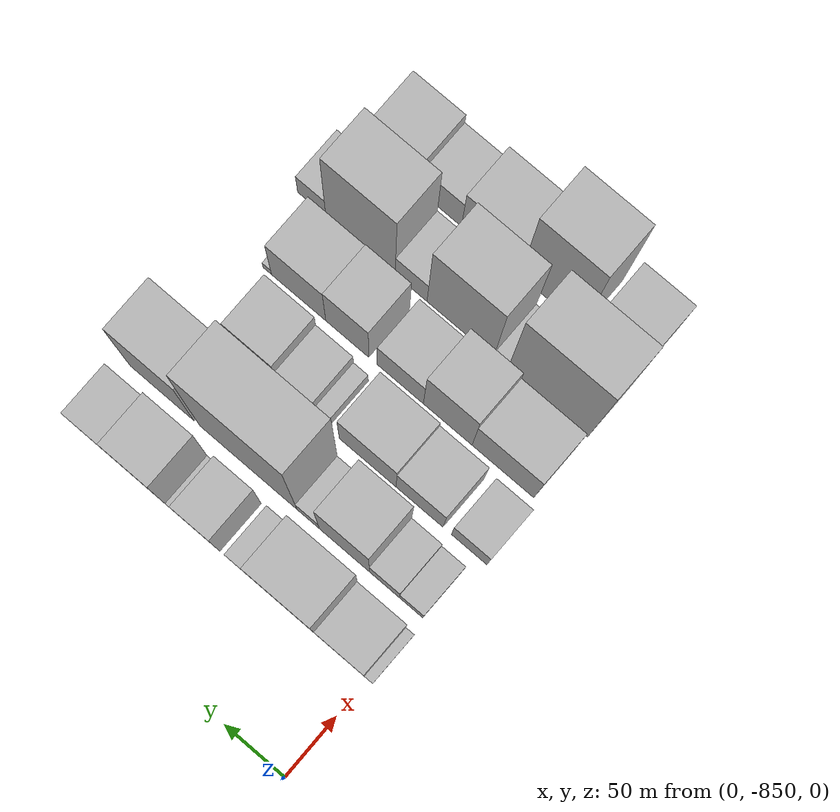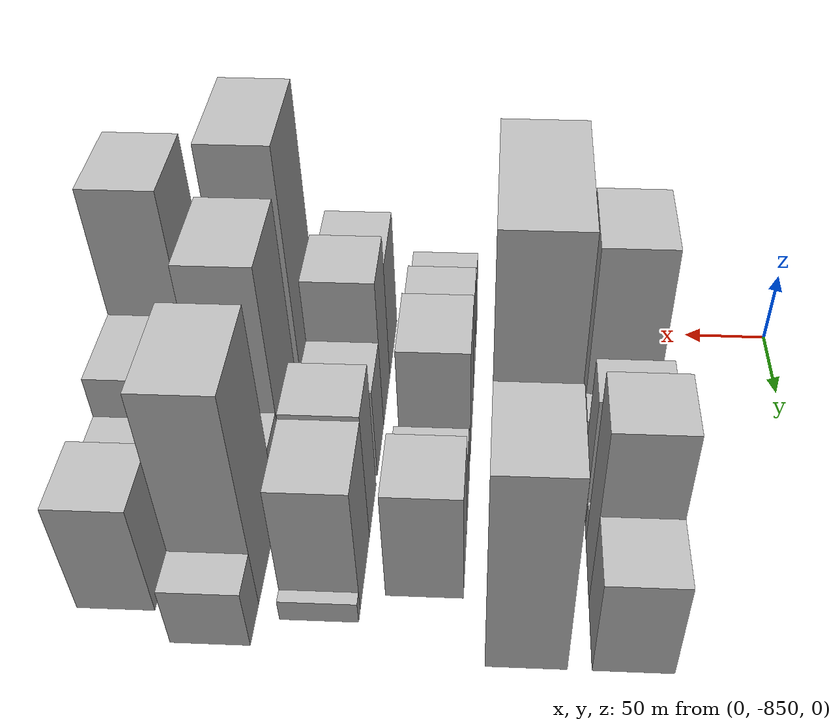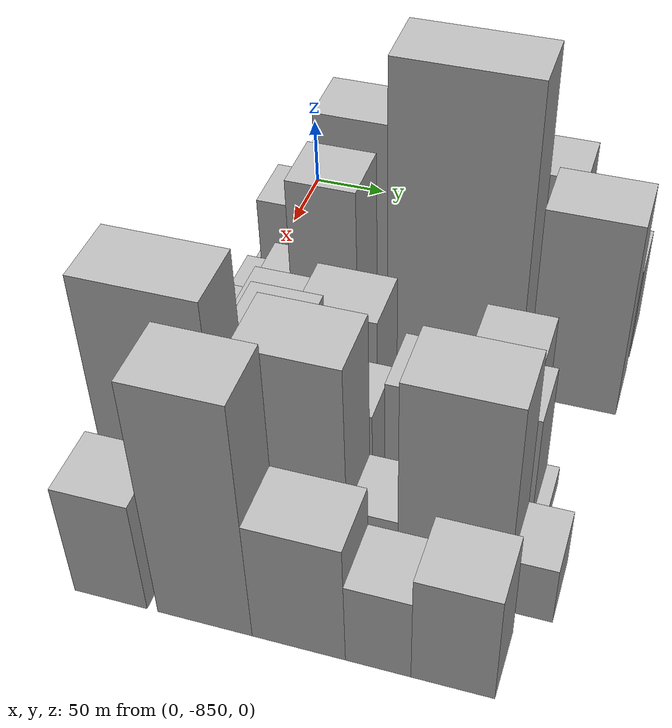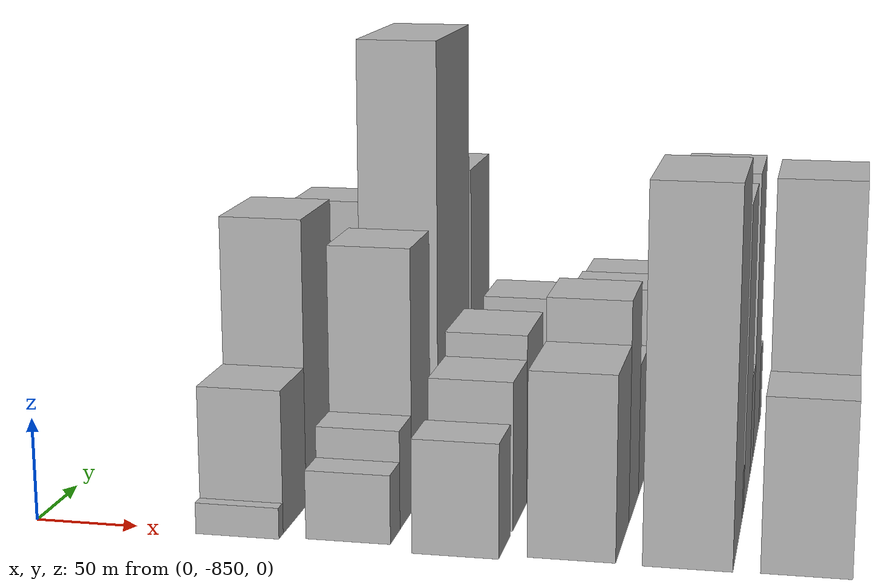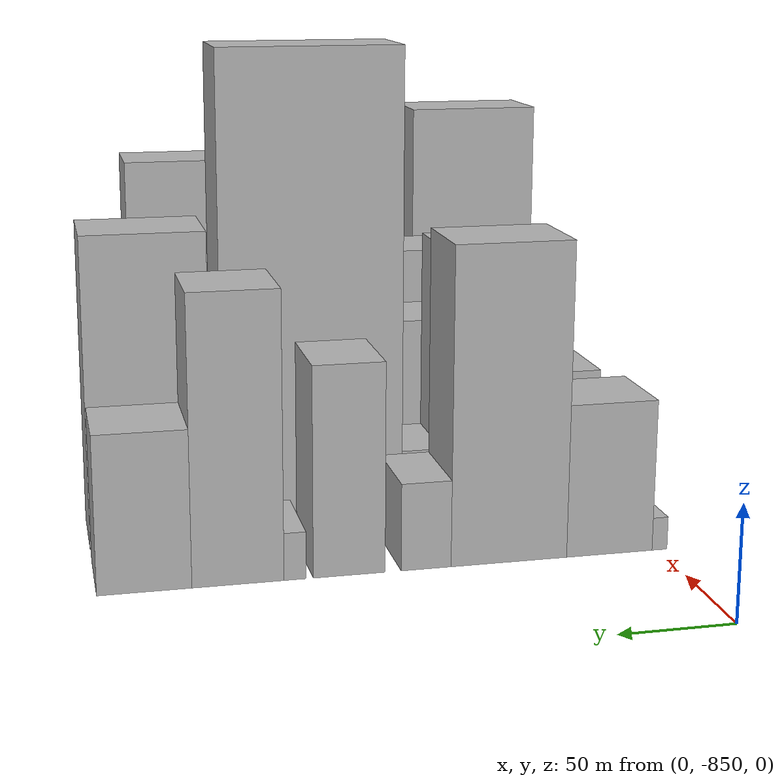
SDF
<sdf version="1.6">
 <world name="default">
  <model name="building_1">
   <static>1</static>
   <pose>100.0000 -850.4928 0 0.000000 0.000000 0.000000</pose>
   <link name="link">
    <pose>0 0 7.50 0 0 0</pose>
    <collision name="collision"><geometry><box><size>40.0000 7.0145 15.0000</size></box></geometry></collision>
    <visual name="visual">
     <cast_shadows>0</cast_shadows>
     <geometry><box><size>40.0000 7.0145 15.0000</size></box></geometry>
     <material>
      <script>
       <uri>model://HANNAS_wall/materials/scripts</uri>
       <uri>model://HANNAS_wall/materials/textures</uri>
       <name>vrc/HANNAS_wall</name>
      </script>
     </material>
    </visual>
   </link>
  </model>
  <model name="building_2">
   <static>1</static>
   <pose>100.0000 -827.1640 0 0.000000 0.000000 0.000000</pose>
   <link name="link">
    <pose>0 0 34.50 0 0 0</pose>
    <collision name="collision"><geometry><box><size>40.0000 39.6430 69.0000</size></box></geometry></collision>
    <visual name="visual">
     <cast_shadows>0</cast_shadows>
     <geometry><box><size>40.0000 39.6430 69.0000</size></box></geometry>
     <material>
      <script>
       <uri>model://HANNAS_wall/materials/scripts</uri>
       <uri>model://HANNAS_wall/materials/textures</uri>
       <name>vrc/HANNAS_wall</name>
      </script>
     </material>
    </visual>
   </link>
  </model>
  <model name="building_3">
   <static>1</static>
   <pose>100.0000 -781.2033 0 0.000000 0.000000 0.000000</pose>
   <link name="link">
    <pose>0 0 70.50 0 0 0</pose>
    <collision name="collision"><geometry><box><size>40.0000 52.2784 141.0000</size></box></geometry></collision>
    <visual name="visual">
     <cast_shadows>0</cast_shadows>
     <geometry><box><size>40.0000 52.2784 141.0000</size></box></geometry>
     <material>
      <script>
       <uri>model://HANNAS_wall/materials/scripts</uri>
       <uri>model://HANNAS_wall/materials/textures</uri>
       <name>vrc/HANNAS_wall</name>
      </script>
     </material>
    </visual>
   </link>
  </model>
  <model name="building_4">
   <static>1</static>
   <pose>100.0000 -744.0244 0 0.000000 0.000000 0.000000</pose>
   <link name="link">
    <pose>0 0 19.50 0 0 0</pose>
    <collision name="collision"><geometry><box><size>40.0000 22.0794 39.0000</size></box></geometry></collision>
    <visual name="visual">
     <cast_shadows>0</cast_shadows>
     <geometry><box><size>40.0000 22.0794 39.0000</size></box></geometry>
     <material>
      <script>
       <uri>model://HANNAS_wall/materials/scripts</uri>
       <uri>model://HANNAS_wall/materials/textures</uri>
       <name>vrc/HANNAS_wall</name>
      </script>
     </material>
    </visual>
   </link>
  </model>
  <model name="building_5">
   <static>1</static>
   <pose>100.0000 -710.3621 0 0.000000 0.000000 0.000000</pose>
   <link name="link">
    <pose>0 0 46.50 0 0 0</pose>
    <collision name="collision"><geometry><box><size>40.0000 31.2453 93.0000</size></box></geometry></collision>
    <visual name="visual">
     <cast_shadows>0</cast_shadows>
     <geometry><box><size>40.0000 31.2453 93.0000</size></box></geometry>
     <material>
      <script>
       <uri>model://HANNAS_wall/materials/scripts</uri>
       <uri>model://HANNAS_wall/materials/textures</uri>
       <name>vrc/HANNAS_wall</name>
      </script>
     </material>
    </visual>
   </link>
  </model>
  <model name="building_6">
   <static>1</static>
   <pose>100.0000 -686.9889 0 0.000000 0.000000 0.000000</pose>
   <link name="link">
    <pose>0 0 10.50 0 0 0</pose>
    <collision name="collision"><geometry><box><size>40.0000 9.5010 21.0000</size></box></geometry></collision>
    <visual name="visual">
     <cast_shadows>0</cast_shadows>
     <geometry><box><size>40.0000 9.5010 21.0000</size></box></geometry>
     <material>
      <script>
       <uri>model://HANNAS_wall/materials/scripts</uri>
       <uri>model://HANNAS_wall/materials/textures</uri>
       <name>vrc/HANNAS_wall</name>
      </script>
     </material>
    </visual>
   </link>
  </model>
  <model name="building_7">
   <static>1</static>
   <pose>100.0000 -662.8054 0 0.000000 0.000000 0.000000</pose>
   <link name="link">
    <pose>0 0 63.00 0 0 0</pose>
    <collision name="collision"><geometry><box><size>40.0000 38.8661 126.0000</size></box></geometry></collision>
    <visual name="visual">
     <cast_shadows>0</cast_shadows>
     <geometry><box><size>40.0000 38.8661 126.0000</size></box></geometry>
     <material>
      <script>
       <uri>model://HANNAS_wall/materials/scripts</uri>
       <uri>model://HANNAS_wall/materials/textures</uri>
       <name>vrc/HANNAS_wall</name>
      </script>
     </material>
    </visual>
   </link>
  </model>
  <model name="building_8">
   <static>1</static>
   <pose>100.0000 -623.7122 0 0.000000 0.000000 0.000000</pose>
   <link name="link">
    <pose>0 0 34.50 0 0 0</pose>
    <collision name="collision"><geometry><box><size>40.0000 39.3204 69.0000</size></box></geometry></collision>
    <visual name="visual">
     <cast_shadows>0</cast_shadows>
     <geometry><box><size>40.0000 39.3204 69.0000</size></box></geometry>
     <material>
      <script>
       <uri>model://HANNAS_wall/materials/scripts</uri>
       <uri>model://HANNAS_wall/materials/textures</uri>
       <name>vrc/HANNAS_wall</name>
      </script>
     </material>
    </visual>
   </link>
  </model>
  <model name="building_58">
   <static>1</static>
   <pose>152.0000 -841.1821 0 0.000000 0.000000 0.000000</pose>
   <link name="link">
    <pose>0 0 16.50 0 0 0</pose>
    <collision name="collision"><geometry><box><size>40.0000 19.6358 33.0000</size></box></geometry></collision>
    <visual name="visual">
     <cast_shadows>0</cast_shadows>
     <geometry><box><size>40.0000 19.6358 33.0000</size></box></geometry>
     <material>
      <script>
       <uri>model://HANNAS_wall/materials/scripts</uri>
       <uri>model://HANNAS_wall/materials/textures</uri>
       <name>vrc/HANNAS_wall</name>
      </script>
     </material>
    </visual>
   </link>
  </model>
  <model name="building_59">
   <static>1</static>
   <pose>152.0000 -818.9174 0 0.000000 0.000000 0.000000</pose>
   <link name="link">
    <pose>0 0 24.00 0 0 0</pose>
    <collision name="collision"><geometry><box><size>40.0000 24.8937 48.0000</size></box></geometry></collision>
    <visual name="visual">
     <cast_shadows>0</cast_shadows>
     <geometry><box><size>40.0000 24.8937 48.0000</size></box></geometry>
     <material>
      <script>
       <uri>model://HANNAS_wall/materials/scripts</uri>
       <uri>model://HANNAS_wall/materials/textures</uri>
       <name>vrc/HANNAS_wall</name>
      </script>
     </material>
    </visual>
   </link>
  </model>
  <model name="building_60">
   <static>1</static>
   <pose>152.0000 -785.4999 0 0.000000 0.000000 0.000000</pose>
   <link name="link">
    <pose>0 0 64.50 0 0 0</pose>
    <collision name="collision"><geometry><box><size>40.0000 41.9413 129.0000</size></box></geometry></collision>
    <visual name="visual">
     <cast_shadows>0</cast_shadows>
     <geometry><box><size>40.0000 41.9413 129.0000</size></box></geometry>
     <material>
      <script>
       <uri>model://HANNAS_wall/materials/scripts</uri>
       <uri>model://HANNAS_wall/materials/textures</uri>
       <name>vrc/HANNAS_wall</name>
      </script>
     </material>
    </visual>
   </link>
  </model>
  <model name="building_61">
   <static>1</static>
   <pose>152.0000 -755.1609 0 0.000000 0.000000 0.000000</pose>
   <link name="link">
    <pose>0 0 18.00 0 0 0</pose>
    <collision name="collision"><geometry><box><size>40.0000 18.7368 36.0000</size></box></geometry></collision>
    <visual name="visual">
     <cast_shadows>0</cast_shadows>
     <geometry><box><size>40.0000 18.7368 36.0000</size></box></geometry>
     <material>
      <script>
       <uri>model://HANNAS_wall/materials/scripts</uri>
       <uri>model://HANNAS_wall/materials/textures</uri>
       <name>vrc/HANNAS_wall</name>
      </script>
     </material>
    </visual>
   </link>
  </model>
  <model name="building_62">
   <static>1</static>
   <pose>152.0000 -704.5812 0 0.000000 0.000000 0.000000</pose>
   <link name="link">
    <pose>0 0 109.50 0 0 0</pose>
    <collision name="collision"><geometry><box><size>40.0000 82.4225 219.0000</size></box></geometry></collision>
    <visual name="visual">
     <cast_shadows>0</cast_shadows>
     <geometry><box><size>40.0000 82.4225 219.0000</size></box></geometry>
     <material>
      <script>
       <uri>model://HANNAS_wall/materials/scripts</uri>
       <uri>model://HANNAS_wall/materials/textures</uri>
       <name>vrc/HANNAS_wall</name>
      </script>
     </material>
    </visual>
   </link>
  </model>
  <model name="building_63">
   <static>1</static>
   <pose>152.0000 -631.2233 0 0.000000 0.000000 0.000000</pose>
   <link name="link">
    <pose>0 0 70.50 0 0 0</pose>
    <collision name="collision"><geometry><box><size>40.0000 54.2934 141.0000</size></box></geometry></collision>
    <visual name="visual">
     <cast_shadows>0</cast_shadows>
     <geometry><box><size>40.0000 54.2934 141.0000</size></box></geometry>
     <material>
      <script>
       <uri>model://HANNAS_wall/materials/scripts</uri>
       <uri>model://HANNAS_wall/materials/textures</uri>
       <name>vrc/HANNAS_wall</name>
      </script>
     </material>
    </visual>
   </link>
  </model>
  <model name="building_100">
   <static>1</static>
   <pose>204.0000 -845.1607 0 0.000000 0.000000 0.000000</pose>
   <link name="link">
    <pose>0 0 27.00 0 0 0</pose>
    <collision name="collision"><geometry><box><size>40.0000 29.6786 54.0000</size></box></geometry></collision>
    <visual name="visual">
     <cast_shadows>0</cast_shadows>
     <geometry><box><size>40.0000 29.6786 54.0000</size></box></geometry>
     <material>
      <script>
       <uri>model://HANNAS_wall/materials/scripts</uri>
       <uri>model://HANNAS_wall/materials/textures</uri>
       <name>vrc/HANNAS_wall</name>
      </script>
     </material>
    </visual>
   </link>
  </model>
  <model name="building_101">
   <static>1</static>
   <pose>204.0000 -803.6452 0 0.000000 0.000000 0.000000</pose>
   <link name="link">
    <pose>0 0 36.00 0 0 0</pose>
    <collision name="collision"><geometry><box><size>40.0000 39.3524 72.0000</size></box></geometry></collision>
    <visual name="visual">
     <cast_shadows>0</cast_shadows>
     <geometry><box><size>40.0000 39.3524 72.0000</size></box></geometry>
     <material>
      <script>
       <uri>model://HANNAS_wall/materials/scripts</uri>
       <uri>model://HANNAS_wall/materials/textures</uri>
       <name>vrc/HANNAS_wall</name>
      </script>
     </material>
    </visual>
   </link>
  </model>
  <model name="building_102">
   <static>1</static>
   <pose>204.0000 -760.1227 0 0.000000 0.000000 0.000000</pose>
   <link name="link">
    <pose>0 0 42.00 0 0 0</pose>
    <collision name="collision"><geometry><box><size>40.0000 47.6925 84.0000</size></box></geometry></collision>
    <visual name="visual">
     <cast_shadows>0</cast_shadows>
     <geometry><box><size>40.0000 47.6925 84.0000</size></box></geometry>
     <material>
      <script>
       <uri>model://HANNAS_wall/materials/scripts</uri>
       <uri>model://HANNAS_wall/materials/textures</uri>
       <name>vrc/HANNAS_wall</name>
      </script>
     </material>
    </visual>
   </link>
  </model>
  <model name="building_103">
   <static>1</static>
   <pose>204.0000 -720.1710 0 0.000000 0.000000 0.000000</pose>
   <link name="link">
    <pose>0 0 13.50 0 0 0</pose>
    <collision name="collision"><geometry><box><size>40.0000 12.2110 27.0000</size></box></geometry></collision>
    <visual name="visual">
     <cast_shadows>0</cast_shadows>
     <geometry><box><size>40.0000 12.2110 27.0000</size></box></geometry>
     <material>
      <script>
       <uri>model://HANNAS_wall/materials/scripts</uri>
       <uri>model://HANNAS_wall/materials/textures</uri>
       <name>vrc/HANNAS_wall</name>
      </script>
     </material>
    </visual>
   </link>
  </model>
  <model name="building_104">
   <static>1</static>
   <pose>204.0000 -698.7889 0 0.000000 0.000000 0.000000</pose>
   <link name="link">
    <pose>0 0 25.50 0 0 0</pose>
    <collision name="collision"><geometry><box><size>40.0000 30.5532 51.0000</size></box></geometry></collision>
    <visual name="visual">
     <cast_shadows>0</cast_shadows>
     <geometry><box><size>40.0000 30.5532 51.0000</size></box></geometry>
     <material>
      <script>
       <uri>model://HANNAS_wall/materials/scripts</uri>
       <uri>model://HANNAS_wall/materials/textures</uri>
       <name>vrc/HANNAS_wall</name>
      </script>
     </material>
    </visual>
   </link>
  </model>
  <model name="building_105">
   <static>1</static>
   <pose>204.0000 -663.2762 0 0.000000 0.000000 0.000000</pose>
   <link name="link">
    <pose>0 0 39.00 0 0 0</pose>
    <collision name="collision"><geometry><box><size>40.0000 40.4722 78.0000</size></box></geometry></collision>
    <visual name="visual">
     <cast_shadows>0</cast_shadows>
     <geometry><box><size>40.0000 40.4722 78.0000</size></box></geometry>
     <material>
      <script>
       <uri>model://HANNAS_wall/materials/scripts</uri>
       <uri>model://HANNAS_wall/materials/textures</uri>
       <name>vrc/HANNAS_wall</name>
      </script>
     </material>
    </visual>
   </link>
  </model>
  <model name="building_151">
   <static>1</static>
   <pose>256.0000 -829.1859 0 0.000000 0.000000 0.000000</pose>
   <link name="link">
    <pose>0 0 43.50 0 0 0</pose>
    <collision name="collision"><geometry><box><size>40.0000 51.6282 87.0000</size></box></geometry></collision>
    <visual name="visual">
     <cast_shadows>0</cast_shadows>
     <geometry><box><size>40.0000 51.6282 87.0000</size></box></geometry>
     <material>
      <script>
       <uri>model://HANNAS_wall/materials/scripts</uri>
       <uri>model://HANNAS_wall/materials/textures</uri>
       <name>vrc/HANNAS_wall</name>
      </script>
     </material>
    </visual>
   </link>
  </model>
  <model name="building_152">
   <static>1</static>
   <pose>256.0000 -782.8693 0 0.000000 0.000000 0.000000</pose>
   <link name="link">
    <pose>0 0 54.00 0 0 0</pose>
    <collision name="collision"><geometry><box><size>40.0000 41.0049 108.0000</size></box></geometry></collision>
    <visual name="visual">
     <cast_shadows>0</cast_shadows>
     <geometry><box><size>40.0000 41.0049 108.0000</size></box></geometry>
     <material>
      <script>
       <uri>model://HANNAS_wall/materials/scripts</uri>
       <uri>model://HANNAS_wall/materials/textures</uri>
       <name>vrc/HANNAS_wall</name>
      </script>
     </material>
    </visual>
   </link>
  </model>
  <model name="building_153">
   <static>1</static>
   <pose>256.0000 -742.8651 0 0.000000 0.000000 0.000000</pose>
   <link name="link">
    <pose>0 0 33.00 0 0 0</pose>
    <collision name="collision"><geometry><box><size>40.0000 39.0035 66.0000</size></box></geometry></collision>
    <visual name="visual">
     <cast_shadows>0</cast_shadows>
     <geometry><box><size>40.0000 39.0035 66.0000</size></box></geometry>
     <material>
      <script>
       <uri>model://HANNAS_wall/materials/scripts</uri>
       <uri>model://HANNAS_wall/materials/textures</uri>
       <name>vrc/HANNAS_wall</name>
      </script>
     </material>
    </visual>
   </link>
  </model>
  <model name="building_154">
   <static>1</static>
   <pose>256.0000 -698.0895 0 0.000000 0.000000 0.000000</pose>
   <link name="link">
    <pose>0 0 46.50 0 0 0</pose>
    <collision name="collision"><geometry><box><size>40.0000 36.5478 93.0000</size></box></geometry></collision>
    <visual name="visual">
     <cast_shadows>0</cast_shadows>
     <geometry><box><size>40.0000 36.5478 93.0000</size></box></geometry>
     <material>
      <script>
       <uri>model://HANNAS_wall/materials/scripts</uri>
       <uri>model://HANNAS_wall/materials/textures</uri>
       <name>vrc/HANNAS_wall</name>
      </script>
     </material>
    </visual>
   </link>
  </model>
  <model name="building_155">
   <static>1</static>
   <pose>256.0000 -656.7595 0 0.000000 0.000000 0.000000</pose>
   <link name="link">
    <pose>0 0 45.00 0 0 0</pose>
    <collision name="collision"><geometry><box><size>40.0000 46.1121 90.0000</size></box></geometry></collision>
    <visual name="visual">
     <cast_shadows>0</cast_shadows>
     <geometry><box><size>40.0000 46.1121 90.0000</size></box></geometry>
     <material>
      <script>
       <uri>model://HANNAS_wall/materials/scripts</uri>
       <uri>model://HANNAS_wall/materials/textures</uri>
       <name>vrc/HANNAS_wall</name>
      </script>
     </material>
    </visual>
   </link>
  </model>
  <model name="building_156">
   <static>1</static>
   <pose>256.0000 -630.0494 0 0.000000 0.000000 0.000000</pose>
   <link name="link">
    <pose>0 0 7.50 0 0 0</pose>
    <collision name="collision"><geometry><box><size>40.0000 7.3081 15.0000</size></box></geometry></collision>
    <visual name="visual">
     <cast_shadows>0</cast_shadows>
     <geometry><box><size>40.0000 7.3081 15.0000</size></box></geometry>
     <material>
      <script>
       <uri>model://HANNAS_wall/materials/scripts</uri>
       <uri>model://HANNAS_wall/materials/textures</uri>
       <name>vrc/HANNAS_wall</name>
      </script>
     </material>
    </visual>
   </link>
  </model>
  <model name="building_200">
   <static>1</static>
   <pose>308.0000 -822.4333 0 0.000000 0.000000 0.000000</pose>
   <link name="link">
    <pose>0 0 87.00 0 0 0</pose>
    <collision name="collision"><geometry><box><size>40.0000 67.1333 174.0000</size></box></geometry></collision>
    <visual name="visual">
     <cast_shadows>0</cast_shadows>
     <geometry><box><size>40.0000 67.1333 174.0000</size></box></geometry>
     <material>
      <script>
       <uri>model://HANNAS_wall/materials/scripts</uri>
       <uri>model://HANNAS_wall/materials/textures</uri>
       <name>vrc/HANNAS_wall</name>
      </script>
     </material>
    </visual>
   </link>
  </model>
  <model name="building_201">
   <static>1</static>
   <pose>308.0000 -782.9852 0 0.000000 0.000000 0.000000</pose>
   <link name="link">
    <pose>0 0 12.00 0 0 0</pose>
    <collision name="collision"><geometry><box><size>40.0000 11.7629 24.0000</size></box></geometry></collision>
    <visual name="visual">
     <cast_shadows>0</cast_shadows>
     <geometry><box><size>40.0000 11.7629 24.0000</size></box></geometry>
     <material>
      <script>
       <uri>model://HANNAS_wall/materials/scripts</uri>
       <uri>model://HANNAS_wall/materials/textures</uri>
       <name>vrc/HANNAS_wall</name>
      </script>
     </material>
    </visual>
   </link>
  </model>
  <model name="building_202">
   <static>1</static>
   <pose>308.0000 -749.0475 0 0.000000 0.000000 0.000000</pose>
   <link name="link">
    <pose>0 0 75.00 0 0 0</pose>
    <collision name="collision"><geometry><box><size>40.0000 56.1124 150.0000</size></box></geometry></collision>
    <visual name="visual">
     <cast_shadows>0</cast_shadows>
     <geometry><box><size>40.0000 56.1124 150.0000</size></box></geometry>
     <material>
      <script>
       <uri>model://HANNAS_wall/materials/scripts</uri>
       <uri>model://HANNAS_wall/materials/textures</uri>
       <name>vrc/HANNAS_wall</name>
      </script>
     </material>
    </visual>
   </link>
  </model>
  <model name="building_203">
   <static>1</static>
   <pose>308.0000 -707.4397 0 0.000000 0.000000 0.000000</pose>
   <link name="link">
    <pose>0 0 25.50 0 0 0</pose>
    <collision name="collision"><geometry><box><size>40.0000 27.1031 51.0000</size></box></geometry></collision>
    <visual name="visual">
     <cast_shadows>0</cast_shadows>
     <geometry><box><size>40.0000 27.1031 51.0000</size></box></geometry>
     <material>
      <script>
       <uri>model://HANNAS_wall/materials/scripts</uri>
       <uri>model://HANNAS_wall/materials/textures</uri>
       <name>vrc/HANNAS_wall</name>
      </script>
     </material>
    </visual>
   </link>
  </model>
  <model name="building_204">
   <static>1</static>
   <pose>308.0000 -664.3437 0 0.000000 0.000000 0.000000</pose>
   <link name="link">
    <pose>0 0 75.00 0 0 0</pose>
    <collision name="collision"><geometry><box><size>40.0000 59.0890 150.0000</size></box></geometry></collision>
    <visual name="visual">
     <cast_shadows>0</cast_shadows>
     <geometry><box><size>40.0000 59.0890 150.0000</size></box></geometry>
     <material>
      <script>
       <uri>model://HANNAS_wall/materials/scripts</uri>
       <uri>model://HANNAS_wall/materials/textures</uri>
       <name>vrc/HANNAS_wall</name>
      </script>
     </material>
    </visual>
   </link>
  </model>
  <model name="building_205">
   <static>1</static>
   <pose>308.0000 -622.7831 0 0.000000 0.000000 0.000000</pose>
   <link name="link">
    <pose>0 0 21.00 0 0 0</pose>
    <collision name="collision"><geometry><box><size>40.0000 24.0322 42.0000</size></box></geometry></collision>
    <visual name="visual">
     <cast_shadows>0</cast_shadows>
     <geometry><box><size>40.0000 24.0322 42.0000</size></box></geometry>
     <material>
      <script>
       <uri>model://HANNAS_wall/materials/scripts</uri>
       <uri>model://HANNAS_wall/materials/textures</uri>
       <name>vrc/HANNAS_wall</name>
      </script>
     </material>
    </visual>
   </link>
  </model>
  <model name="building_253">
   <static>1</static>
   <pose>360.0000 -834.4072 0 0.000000 0.000000 0.000000</pose>
   <link name="link">
    <pose>0 0 40.50 0 0 0</pose>
    <collision name="collision"><geometry><box><size>40.0000 41.1856 81.0000</size></box></geometry></collision>
    <visual name="visual">
     <cast_shadows>0</cast_shadows>
     <geometry><box><size>40.0000 41.1856 81.0000</size></box></geometry>
     <material>
      <script>
       <uri>model://HANNAS_wall/materials/scripts</uri>
       <uri>model://HANNAS_wall/materials/textures</uri>
       <name>vrc/HANNAS_wall</name>
      </script>
     </material>
    </visual>
   </link>
  </model>
  <model name="building_254">
   <static>1</static>
   <pose>360.0000 -781.7377 0 0.000000 0.000000 0.000000</pose>
   <link name="link">
    <pose>0 0 84.00 0 0 0</pose>
    <collision name="collision"><geometry><box><size>40.0000 52.1533 168.0000</size></box></geometry></collision>
    <visual name="visual">
     <cast_shadows>0</cast_shadows>
     <geometry><box><size>40.0000 52.1533 168.0000</size></box></geometry>
     <material>
      <script>
       <uri>model://HANNAS_wall/materials/scripts</uri>
       <uri>model://HANNAS_wall/materials/textures</uri>
       <name>vrc/HANNAS_wall</name>
      </script>
     </material>
    </visual>
   </link>
  </model>
  <model name="building_255">
   <static>1</static>
   <pose>360.0000 -730.7215 0 0.000000 0.000000 0.000000</pose>
   <link name="link">
    <pose>0 0 43.50 0 0 0</pose>
    <collision name="collision"><geometry><box><size>40.0000 49.8791 87.0000</size></box></geometry></collision>
    <visual name="visual">
     <cast_shadows>0</cast_shadows>
     <geometry><box><size>40.0000 49.8791 87.0000</size></box></geometry>
     <material>
      <script>
       <uri>model://HANNAS_wall/materials/scripts</uri>
       <uri>model://HANNAS_wall/materials/textures</uri>
       <name>vrc/HANNAS_wall</name>
      </script>
     </material>
    </visual>
   </link>
  </model>
  <model name="building_256">
   <static>1</static>
   <pose>360.0000 -688.7243 0 0.000000 0.000000 0.000000</pose>
   <link name="link">
    <pose>0 0 30.00 0 0 0</pose>
    <collision name="collision"><geometry><box><size>40.0000 34.1153 60.0000</size></box></geometry></collision>
    <visual name="visual">
     <cast_shadows>0</cast_shadows>
     <geometry><box><size>40.0000 34.1153 60.0000</size></box></geometry>
     <material>
      <script>
       <uri>model://HANNAS_wall/materials/scripts</uri>
       <uri>model://HANNAS_wall/materials/textures</uri>
       <name>vrc/HANNAS_wall</name>
      </script>
     </material>
    </visual>
   </link>
  </model>
  <model name="building_257">
   <static>1</static>
   <pose>360.0000 -650.3065 0 0.000000 0.000000 0.000000</pose>
   <link name="link">
    <pose>0 0 39.00 0 0 0</pose>
    <collision name="collision"><geometry><box><size>40.0000 42.7202 78.0000</size></box></geometry></collision>
    <visual name="visual">
     <cast_shadows>0</cast_shadows>
     <geometry><box><size>40.0000 42.7202 78.0000</size></box></geometry>
     <material>
      <script>
       <uri>model://HANNAS_wall/materials/scripts</uri>
       <uri>model://HANNAS_wall/materials/textures</uri>
       <name>vrc/HANNAS_wall</name>
      </script>
     </material>
    </visual>
   </link>
  </model>
 </world>
</sdf>
